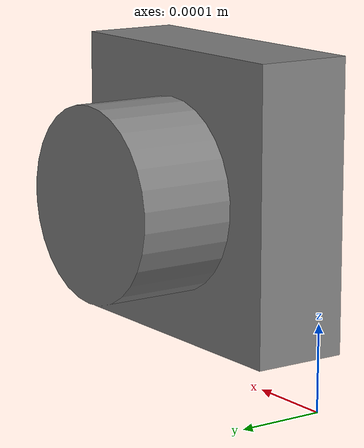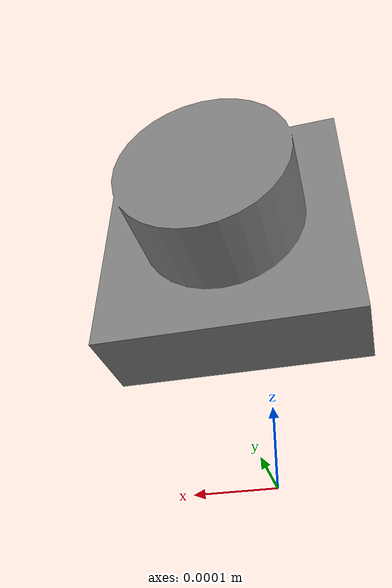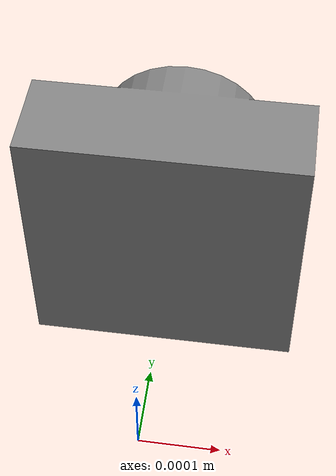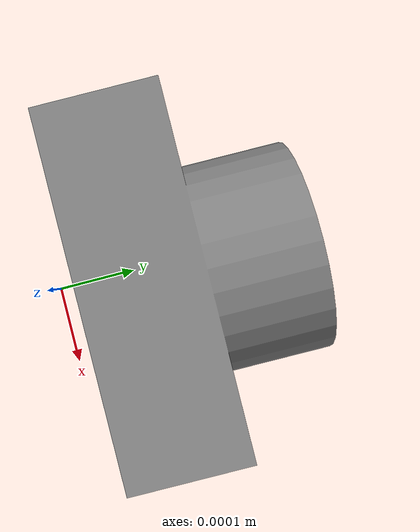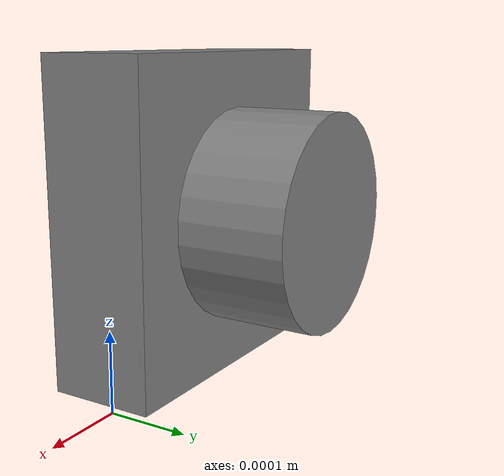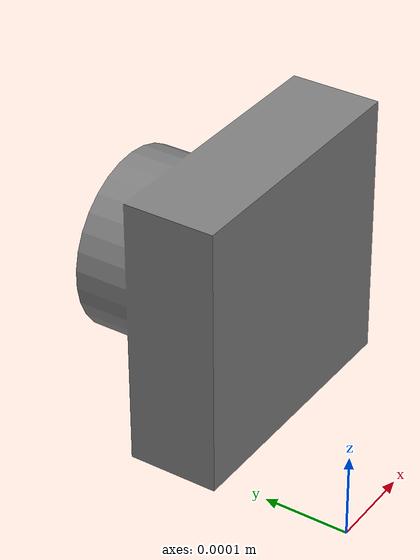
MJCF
<mujoco model="isacsim_test">
  <compiler angle="radian"/>
  <default>
    <geom contype="1" conaffinity="1" group="2"/>
  </default>
  <asset>
    <!-- Meshes -->
    <mesh name="base" file="meshes/base.stl" scale="0.001 0.001 0.001"/>
  </asset>

  <!-- Body Structure -->
  <worldbody>
    <!-- RH-P12-RN Base -->
    <body name="rh_p12_rn_base" pos="0 0 0">
      <inertial mass="0.236" pos="0 0 0.032" diaginertia="0.00017 0.00011 0.00017"/>
      <geom mesh="base" rgba="0.5 0.5 0.5 1" type="mesh"/>
    </body>
  </worldbody>

</mujoco>
